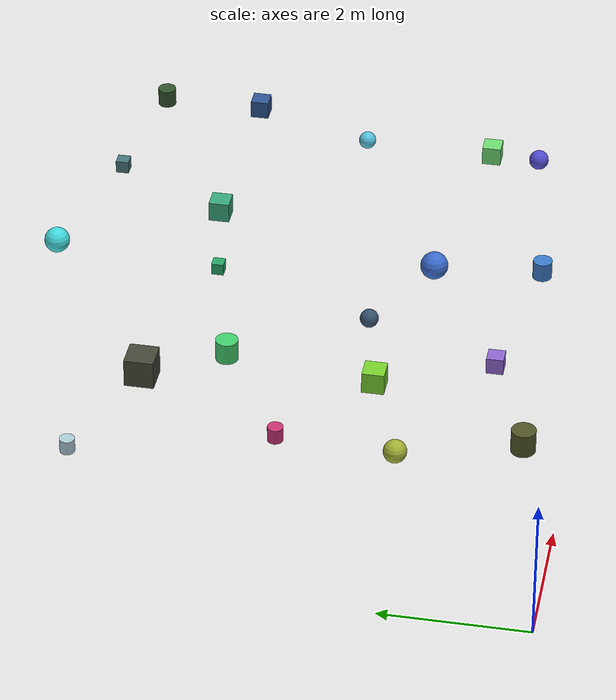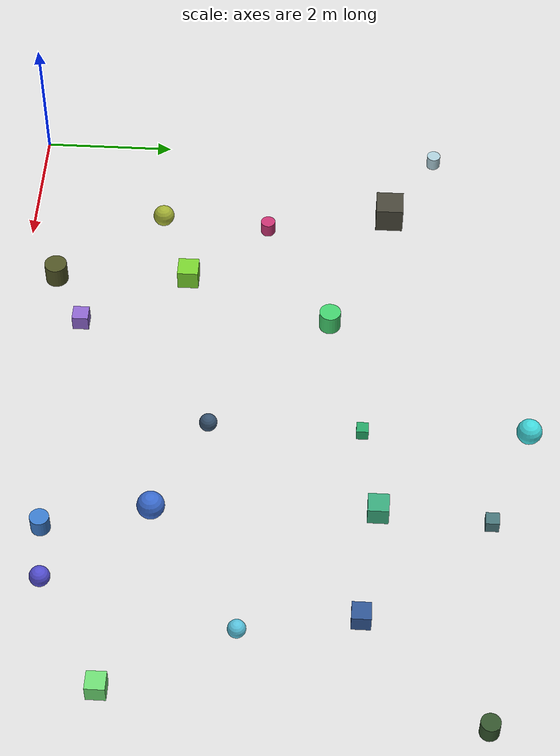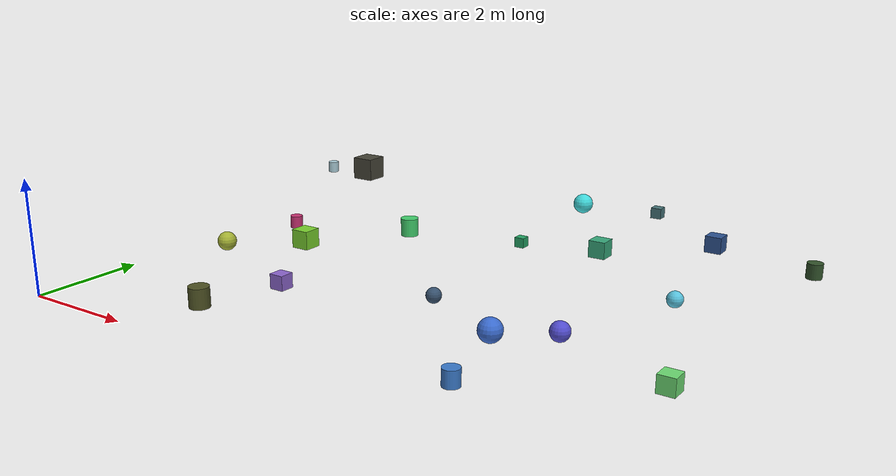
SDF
<sdf version="1.9">
 <world name="runway">
  <physics name="1ms" type="ignore">
   <max_step_size>0.001</max_step_size>
   <real_time_factor>1.0</real_time_factor>
  </physics>
  <plugin filename="gz-sim-physics-system" name="gz::sim::systems::Physics"/>
  <plugin filename="gz-sim-sensors-system" name="gz::sim::systems::Sensors">
   <render_engine>ogre2</render_engine>
  </plugin>
  <plugin filename="gz-sim-user-commands-system" name="gz::sim::systems::UserCommands"/>
  <plugin filename="gz-sim-scene-broadcaster-system" name="gz::sim::systems::SceneBroadcaster"/>
  <plugin filename="gz-sim-air-pressure-system" name="gz::sim::systems::AirPressure"/>
  <plugin filename="gz-sim-air-speed-system" name="gz::sim::systems::AirSpeed"/>
  <plugin filename="gz-sim-altimeter-system" name="gz::sim::systems::Altimeter"/>
  <plugin filename="gz-sim-imu-system" name="gz::sim::systems::Imu"/>
  <plugin filename="gz-sim-magnetometer-system" name="gz::sim::systems::Magnetometer"/>
  <plugin filename="gz-sim-navsat-system" name="gz::sim::systems::NavSat"/>
  <scene><ambient>1.0 1.0 1.0</ambient><background>0.8 0.8 0.8</background></scene>
  <light type="directional" name="sun">
   <pose>0 0 10 0 0 0</pose>
   <diffuse>0.8 0.8 0.8 1</diffuse>
   <specular>0.8 0.8 0.8 1</specular>
   <attenuation>
    <range>1000</range>
    <constant>0.9</constant>
    <linear>0.01</linear>
    <quadratic>0.001</quadratic>
   </attenuation>
   <direction>-0.5 0.1 -0.9</direction>
  </light>
  <spherical_coordinates>
   <latitude_deg>-35.3632621</latitude_deg>
   <longitude_deg>149.1652374</longitude_deg>
   <elevation>10.0</elevation>
   <heading_deg>0</heading_deg>
   <surface_model>EARTH_WGS84</surface_model>
  </spherical_coordinates>
  <model name="random_obstacle_0">
   <pose>3.594 2.635 0.988 0 0 0</pose>
   <link name="link">
    <visual name="visual">
     <geometry><box><size>0.304 0.304 0.304</size></box></geometry>
     <material><ambient>0.474 0.816 0.18 1.0</ambient><diffuse>0.474 0.816 0.18 1.0</diffuse></material>
    </visual>
    <collision name="collision"><geometry><box><size>0.304 0.304 0.304</size></box></geometry></collision>
   </link>
  </model>
  <model name="random_obstacle_1">
   <pose>9.527 3.758 0.841 0 0 0</pose>
   <link name="link">
    <visual name="visual">
     <geometry><sphere><radius>0.124</radius></sphere></geometry>
     <material><ambient>0.345 0.765 0.869 1.0</ambient><diffuse>0.345 0.765 0.869 1.0</diffuse></material>
    </visual>
    <collision name="collision"><geometry><sphere><radius>0.124</radius></sphere></geometry></collision>
   </link>
  </model>
  <model name="random_obstacle_2">
   <pose>6.149 5.281 0.699 0 0 0</pose>
   <link name="link">
    <visual name="visual">
     <geometry><box><size>0.17 0.17 0.17</size></box></geometry>
     <material><ambient>0.147 0.644 0.397 1.0</ambient><diffuse>0.147 0.644 0.397 1.0</diffuse></material>
    </visual>
    <collision name="collision"><geometry><box><size>0.17 0.17 0.17</size></box></geometry></collision>
   </link>
  </model>
  <model name="random_obstacle_3">
   <pose>4.43 1.132 0.85 0 0 0</pose>
   <link name="link">
    <visual name="visual">
     <geometry><box><size>0.234 0.234 0.234</size></box></geometry>
     <material><ambient>0.55 0.397 0.805 1.0</ambient><diffuse>0.55 0.397 0.805 1.0</diffuse></material>
    </visual>
    <collision name="collision"><geometry><box><size>0.234 0.234 0.234</size></box></geometry></collision>
   </link>
  </model>
  <model name="random_obstacle_4">
   <pose>2.283 2.139 0.824 0 0 0</pose>
   <link name="link">
    <visual name="visual">
     <geometry><sphere><radius>0.158</radius></sphere></geometry>
     <material><ambient>0.647 0.699 0.207 1.0</ambient><diffuse>0.647 0.699 0.207 1.0</diffuse></material>
    </visual>
    <collision name="collision"><geometry><sphere><radius>0.158</radius></sphere></geometry></collision>
   </link>
  </model>
  <model name="random_obstacle_5">
   <pose>9.054 1.182 1.109 0 0 0</pose>
   <link name="link">
    <visual name="visual">
     <geometry><sphere><radius>0.139</radius></sphere></geometry>
     <material><ambient>0.324 0.304 0.818 1.0</ambient><diffuse>0.324 0.304 0.818 1.0</diffuse></material>
    </visual>
    <collision name="collision"><geometry><sphere><radius>0.139</radius></sphere></geometry></collision>
   </link>
  </model>
  <model name="random_obstacle_6">
   <pose>1.202 6.227 1.168 0 0 0</pose>
   <link name="link">
    <visual name="visual">
     <geometry><cylinder><radius>0.0995</radius><length>0.199</length></cylinder></geometry>
     <material><ambient>0.674 0.805 0.848 1.0</ambient><diffuse>0.674 0.805 0.848 1.0</diffuse></material>
    </visual>
    <collision name="collision">
     <geometry><cylinder><radius>0.0995</radius><length>0.199</length></cylinder></geometry>
    </collision>
   </link>
  </model>
  <model name="random_obstacle_7">
   <pose>2.629 5.56 1.473 0 0 0</pose>
   <link name="link">
    <visual name="visual">
     <geometry><box><size>0.394 0.394 0.394</size></box></geometry>
     <material><ambient>0.276 0.271 0.221 1.0</ambient><diffuse>0.276 0.271 0.221 1.0</diffuse></material>
    </visual>
    <collision name="collision"><geometry><box><size>0.394 0.394 0.394</size></box></geometry></collision>
   </link>
  </model>
  <model name="random_obstacle_8">
   <pose>9.503 5.336 1.262 0 0 0</pose>
   <link name="link">
    <visual name="visual">
     <geometry><box><size>0.255 0.255 0.255</size></box></geometry>
     <material><ambient>0.181 0.33 0.572 1.0</ambient><diffuse>0.181 0.33 0.572 1.0</diffuse></material>
    </visual>
    <collision name="collision"><geometry><box><size>0.255 0.255 0.255</size></box></geometry></collision>
   </link>
  </model>
  <model name="random_obstacle_9">
   <pose>5.836 3.087 0.32 0 0 0</pose>
   <link name="link">
    <visual name="visual">
     <geometry><sphere><radius>0.13</radius></sphere></geometry>
     <material><ambient>0.213 0.319 0.432 1.0</ambient><diffuse>0.213 0.319 0.432 1.0</diffuse></material>
    </visual>
    <collision name="collision"><geometry><sphere><radius>0.13</radius></sphere></geometry></collision>
   </link>
  </model>
  <model name="random_obstacle_10">
   <pose>4.169 4.752 0.762 0 0 0</pose>
   <link name="link">
    <visual name="visual">
     <geometry><cylinder><radius>0.155</radius><length>0.31</length></cylinder></geometry>
     <material><ambient>0.259 0.809 0.427 1.0</ambient><diffuse>0.259 0.809 0.427 1.0</diffuse></material>
    </visual>
    <collision name="collision">
     <geometry><cylinder><radius>0.155</radius><length>0.31</length></cylinder></geometry>
    </collision>
   </link>
  </model>
  <model name="random_obstacle_11">
   <pose>7.622 0.905 0.224 0 0 0</pose>
   <link name="link">
    <visual name="visual">
     <geometry><cylinder><radius>0.1365</radius><length>0.273</length></cylinder></geometry>
     <material><ambient>0.231 0.48 0.794 1.0</ambient><diffuse>0.231 0.48 0.794 1.0</diffuse></material>
    </visual>
    <collision name="collision">
     <geometry><cylinder><radius>0.1365</radius><length>0.273</length></cylinder></geometry>
    </collision>
   </link>
  </model>
  <model name="random_obstacle_12">
   <pose>10.209 2.0 0.412 0 0 0</pose>
   <link name="link">
    <visual name="visual">
     <geometry><box><size>0.271 0.271 0.271</size></box></geometry>
     <material><ambient>0.428 0.858 0.449 1.0</ambient><diffuse>0.428 0.858 0.449 1.0</diffuse></material>
    </visual>
    <collision name="collision"><geometry><box><size>0.271 0.271 0.271</size></box></geometry></collision>
   </link>
  </model>
  <model name="random_obstacle_13">
   <pose>6.15 7.59 0.856 0 0 0</pose>
   <link name="link">
    <visual name="visual">
     <geometry><sphere><radius>0.179</radius></sphere></geometry>
     <material><ambient>0.255 0.854 0.866 1.0</ambient><diffuse>0.255 0.854 0.866 1.0</diffuse></material>
    </visual>
    <collision name="collision"><geometry><sphere><radius>0.179</radius></sphere></geometry></collision>
   </link>
  </model>
  <model name="random_obstacle_14">
   <pose>7.301 2.407 0.301 0 0 0</pose>
   <link name="link">
    <visual name="visual">
     <geometry><sphere><radius>0.197</radius></sphere></geometry>
     <material><ambient>0.229 0.423 0.817 1.0</ambient><diffuse>0.229 0.423 0.817 1.0</diffuse></material>
    </visual>
    <collision name="collision"><geometry><sphere><radius>0.197</radius></sphere></geometry></collision>
   </link>
  </model>
  <model name="random_obstacle_15">
   <pose>3.236 0.582 0.51 0 0 0</pose>
   <link name="link">
    <visual name="visual">
     <geometry><cylinder><radius>0.1675</radius><length>0.335</length></cylinder></geometry>
     <material><ambient>0.309 0.325 0.142 1.0</ambient><diffuse>0.309 0.325 0.142 1.0</diffuse></material>
    </visual>
    <collision name="collision">
     <geometry><cylinder><radius>0.1675</radius><length>0.335</length></cylinder></geometry>
    </collision>
   </link>
  </model>
  <model name="random_obstacle_16">
   <pose>7.862 7.024 1.092 0 0 0</pose>
   <link name="link">
    <visual name="visual">
     <geometry><box><size>0.181 0.181 0.181</size></box></geometry>
     <material><ambient>0.279 0.455 0.473 1.0</ambient><diffuse>0.279 0.455 0.473 1.0</diffuse></material>
    </visual>
    <collision name="collision"><geometry><box><size>0.181 0.181 0.181</size></box></geometry></collision>
   </link>
  </model>
  <model name="random_obstacle_17">
   <pose>10.6 6.997 0.569 0 0 0</pose>
   <link name="link">
    <visual name="visual">
     <geometry><cylinder><radius>0.1305</radius><length>0.261</length></cylinder></geometry>
     <material><ambient>0.199 0.328 0.172 1.0</ambient><diffuse>0.199 0.328 0.172 1.0</diffuse></material>
    </visual>
    <collision name="collision">
     <geometry><cylinder><radius>0.1305</radius><length>0.261</length></cylinder></geometry>
    </collision>
   </link>
  </model>
  <model name="random_obstacle_18">
   <pose>2.401 3.742 0.804 0 0 0</pose>
   <link name="link">
    <visual name="visual">
     <geometry><cylinder><radius>0.1065</radius><length>0.213</length></cylinder></geometry>
     <material><ambient>0.78 0.199 0.448 1.0</ambient><diffuse>0.78 0.199 0.448 1.0</diffuse></material>
    </visual>
    <collision name="collision">
     <geometry><cylinder><radius>0.1065</radius><length>0.213</length></cylinder></geometry>
    </collision>
   </link>
  </model>
  <model name="random_obstacle_19">
   <pose>7.504 5.529 0.769 0 0 0</pose>
   <link name="link">
    <visual name="visual">
     <geometry><box><size>0.289 0.289 0.289</size></box></geometry>
     <material><ambient>0.216 0.657 0.481 1.0</ambient><diffuse>0.216 0.657 0.481 1.0</diffuse></material>
    </visual>
    <collision name="collision"><geometry><box><size>0.289 0.289 0.289</size></box></geometry></collision>
   </link>
  </model>
 </world>
</sdf>
